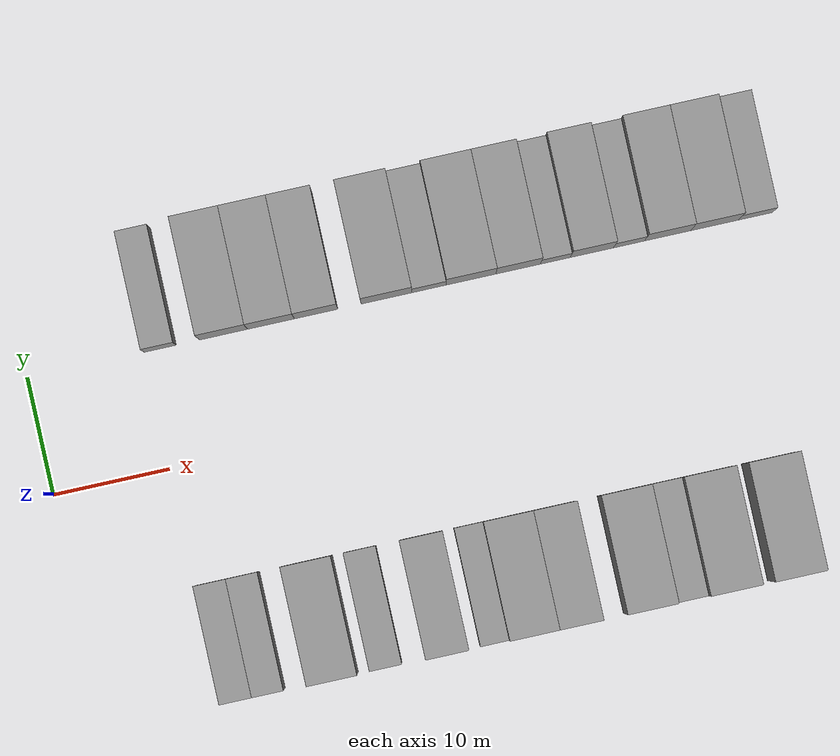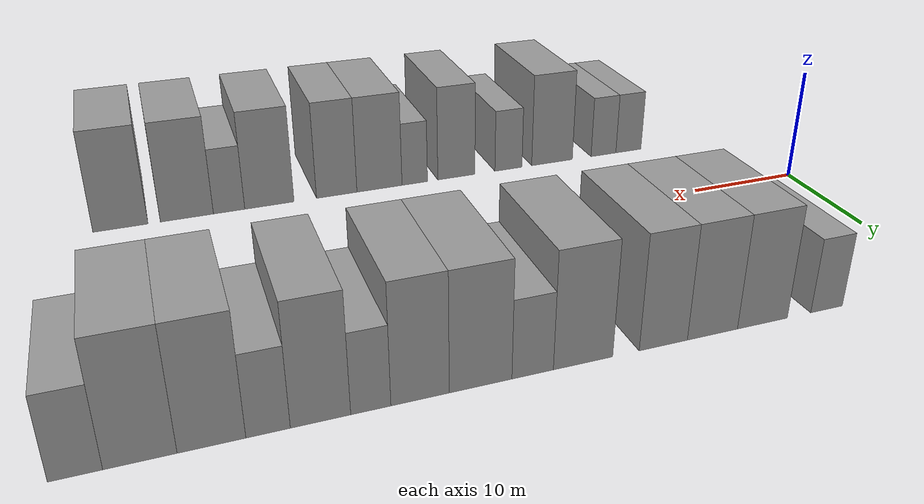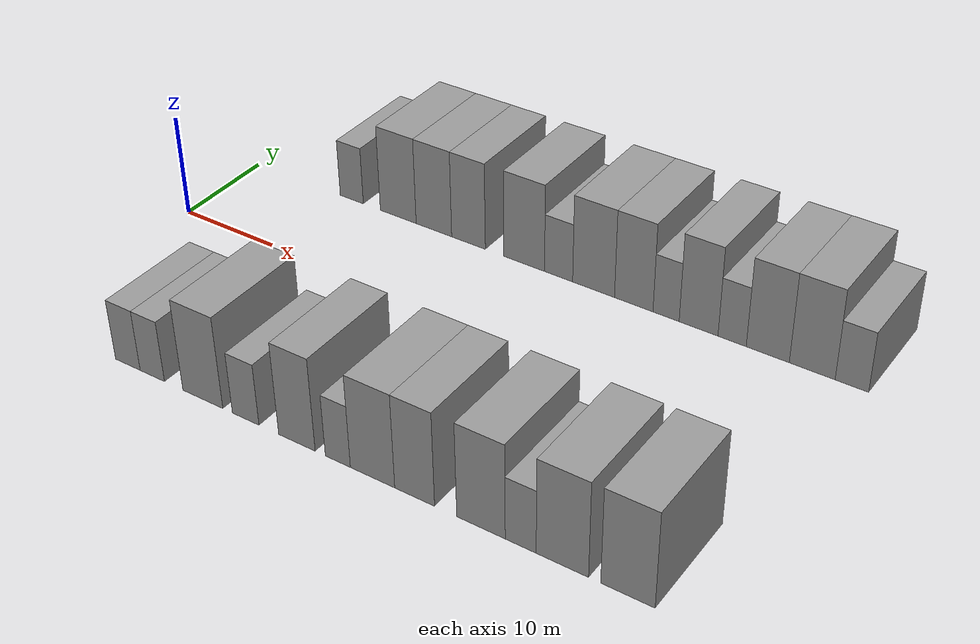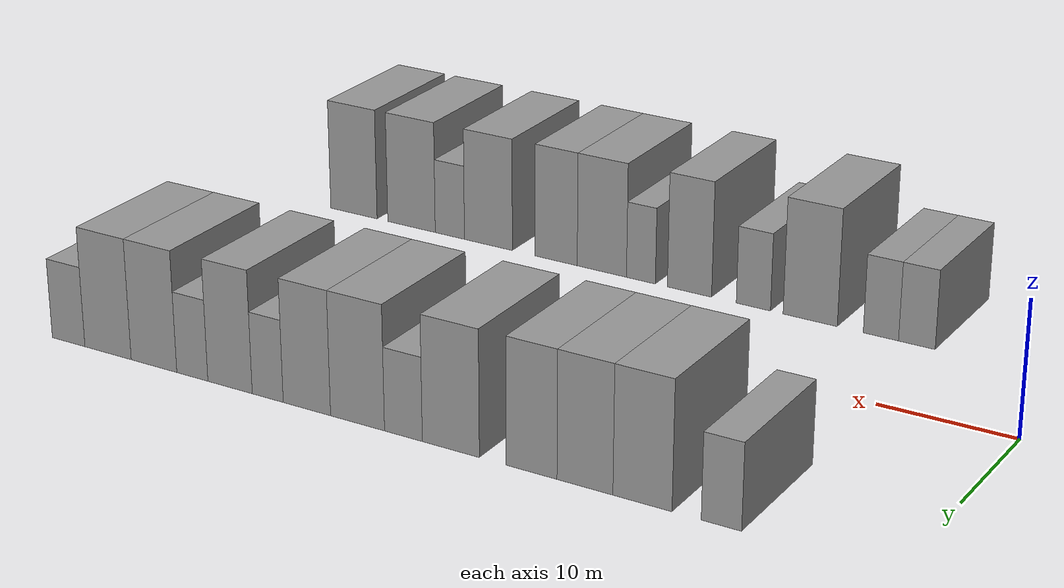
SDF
<sdf version="1.6">
 <world name="default">
  <model name="building_1">
   <static>1</static>
   <pose>11.3692 15.0000 0 0.000000 0.000000 1.570796</pose>
   <link name="link">
    <pose>0 0 3.00 0 0 0</pose>
    <collision name="collision"><geometry><box><size>10.0000 2.7384 6.0000</size></box></geometry></collision>
    <visual name="visual">
     <cast_shadows>0</cast_shadows>
     <geometry><box><size>10.0000 2.7384 6.0000</size></box></geometry>
     <material>
      <script>
       <uri>model://grey_wall/materials/scripts</uri>
       <uri>model://grey_wall/materials/textures</uri>
       <name>vrc/grey_wall</name>
      </script>
     </material>
    </visual>
   </link>
  </model>
  <model name="building_2">
   <static>1</static>
   <pose>16.8051 15.0000 0 0.000000 0.000000 1.570796</pose>
   <link name="link">
    <pose>0 0 4.50 0 0 0</pose>
    <collision name="collision"><geometry><box><size>10.0000 4.1334 9.0000</size></box></geometry></collision>
    <visual name="visual">
     <cast_shadows>0</cast_shadows>
     <geometry><box><size>10.0000 4.1334 9.0000</size></box></geometry>
     <material>
      <script>
       <uri>model://grey_wall/materials/scripts</uri>
       <uri>model://grey_wall/materials/textures</uri>
       <name>vrc/grey_wall</name>
      </script>
     </material>
    </visual>
   </link>
  </model>
  <model name="building_3">
   <static>1</static>
   <pose>20.8733 15.0000 0 0.000000 0.000000 1.570796</pose>
   <link name="link">
    <pose>0 0 4.50 0 0 0</pose>
    <collision name="collision"><geometry><box><size>10.0000 4.0029 9.0000</size></box></geometry></collision>
    <visual name="visual">
     <cast_shadows>0</cast_shadows>
     <geometry><box><size>10.0000 4.0029 9.0000</size></box></geometry>
     <material>
      <script>
       <uri>model://grey_wall/materials/scripts</uri>
       <uri>model://grey_wall/materials/textures</uri>
       <name>vrc/grey_wall</name>
      </script>
     </material>
    </visual>
   </link>
  </model>
  <model name="building_4">
   <static>1</static>
   <pose>24.7356 15.0000 0 0.000000 0.000000 1.570796</pose>
   <link name="link">
    <pose>0 0 4.50 0 0 0</pose>
    <collision name="collision"><geometry><box><size>10.0000 3.7217 9.0000</size></box></geometry></collision>
    <visual name="visual">
     <cast_shadows>0</cast_shadows>
     <geometry><box><size>10.0000 3.7217 9.0000</size></box></geometry>
     <material>
      <script>
       <uri>model://grey_wall/materials/scripts</uri>
       <uri>model://grey_wall/materials/textures</uri>
       <name>vrc/grey_wall</name>
      </script>
     </material>
    </visual>
   </link>
  </model>
  <model name="building_5">
   <static>1</static>
   <pose>30.7625 15.0000 0 0.000000 0.000000 1.570796</pose>
   <link name="link">
    <pose>0 0 4.50 0 0 0</pose>
    <collision name="collision"><geometry><box><size>10.0000 4.3320 9.0000</size></box></geometry></collision>
    <visual name="visual">
     <cast_shadows>0</cast_shadows>
     <geometry><box><size>10.0000 4.3320 9.0000</size></box></geometry>
     <material>
      <script>
       <uri>model://grey_wall/materials/scripts</uri>
       <uri>model://grey_wall/materials/textures</uri>
       <name>vrc/grey_wall</name>
      </script>
     </material>
    </visual>
   </link>
  </model>
  <model name="building_6">
   <static>1</static>
   <pose>34.3926 15.0000 0 0.000000 0.000000 1.570796</pose>
   <link name="link">
    <pose>0 0 3.00 0 0 0</pose>
    <collision name="collision"><geometry><box><size>10.0000 2.9282 6.0000</size></box></geometry></collision>
    <visual name="visual">
     <cast_shadows>0</cast_shadows>
     <geometry><box><size>10.0000 2.9282 6.0000</size></box></geometry>
     <material>
      <script>
       <uri>model://grey_wall/materials/scripts</uri>
       <uri>model://grey_wall/materials/textures</uri>
       <name>vrc/grey_wall</name>
      </script>
     </material>
    </visual>
   </link>
  </model>
  <model name="building_7">
   <static>1</static>
   <pose>37.9927 15.0000 0 0.000000 0.000000 1.570796</pose>
   <link name="link">
    <pose>0 0 4.50 0 0 0</pose>
    <collision name="collision"><geometry><box><size>10.0000 4.2720 9.0000</size></box></geometry></collision>
    <visual name="visual">
     <cast_shadows>0</cast_shadows>
     <geometry><box><size>10.0000 4.2720 9.0000</size></box></geometry>
     <material>
      <script>
       <uri>model://grey_wall/materials/scripts</uri>
       <uri>model://grey_wall/materials/textures</uri>
       <name>vrc/grey_wall</name>
      </script>
     </material>
    </visual>
   </link>
  </model>
  <model name="building_8">
   <static>1</static>
   <pose>42.0451 15.0000 0 0.000000 0.000000 1.570796</pose>
   <link name="link">
    <pose>0 0 4.50 0 0 0</pose>
    <collision name="collision"><geometry><box><size>10.0000 3.8328 9.0000</size></box></geometry></collision>
    <visual name="visual">
     <cast_shadows>0</cast_shadows>
     <geometry><box><size>10.0000 3.8328 9.0000</size></box></geometry>
     <material>
      <script>
       <uri>model://grey_wall/materials/scripts</uri>
       <uri>model://grey_wall/materials/textures</uri>
       <name>vrc/grey_wall</name>
      </script>
     </material>
    </visual>
   </link>
  </model>
  <model name="building_9">
   <static>1</static>
   <pose>45.2384 15.0000 0 0.000000 0.000000 1.570796</pose>
   <link name="link">
    <pose>0 0 3.00 0 0 0</pose>
    <collision name="collision"><geometry><box><size>10.0000 2.5539 6.0000</size></box></geometry></collision>
    <visual name="visual">
     <cast_shadows>0</cast_shadows>
     <geometry><box><size>10.0000 2.5539 6.0000</size></box></geometry>
     <material>
      <script>
       <uri>model://grey_wall/materials/scripts</uri>
       <uri>model://grey_wall/materials/textures</uri>
       <name>vrc/grey_wall</name>
      </script>
     </material>
    </visual>
   </link>
  </model>
  <model name="building_10">
   <static>1</static>
   <pose>48.3754 15.0000 0 0.000000 0.000000 1.570796</pose>
   <link name="link">
    <pose>0 0 4.50 0 0 0</pose>
    <collision name="collision"><geometry><box><size>10.0000 3.7200 9.0000</size></box></geometry></collision>
    <visual name="visual">
     <cast_shadows>0</cast_shadows>
     <geometry><box><size>10.0000 3.7200 9.0000</size></box></geometry>
     <material>
      <script>
       <uri>model://grey_wall/materials/scripts</uri>
       <uri>model://grey_wall/materials/textures</uri>
       <name>vrc/grey_wall</name>
      </script>
     </material>
    </visual>
   </link>
  </model>
  <model name="building_11">
   <static>1</static>
   <pose>51.5613 15.0000 0 0.000000 0.000000 1.570796</pose>
   <link name="link">
    <pose>0 0 3.00 0 0 0</pose>
    <collision name="collision"><geometry><box><size>10.0000 2.6518 6.0000</size></box></geometry></collision>
    <visual name="visual">
     <cast_shadows>0</cast_shadows>
     <geometry><box><size>10.0000 2.6518 6.0000</size></box></geometry>
     <material>
      <script>
       <uri>model://grey_wall/materials/scripts</uri>
       <uri>model://grey_wall/materials/textures</uri>
       <name>vrc/grey_wall</name>
      </script>
     </material>
    </visual>
   </link>
  </model>
  <model name="building_12">
   <static>1</static>
   <pose>54.8684 15.0000 0 0.000000 0.000000 1.570796</pose>
   <link name="link">
    <pose>0 0 4.50 0 0 0</pose>
    <collision name="collision"><geometry><box><size>10.0000 3.9625 9.0000</size></box></geometry></collision>
    <visual name="visual">
     <cast_shadows>0</cast_shadows>
     <geometry><box><size>10.0000 3.9625 9.0000</size></box></geometry>
     <material>
      <script>
       <uri>model://grey_wall/materials/scripts</uri>
       <uri>model://grey_wall/materials/textures</uri>
       <name>vrc/grey_wall</name>
      </script>
     </material>
    </visual>
   </link>
  </model>
  <model name="building_13">
   <static>1</static>
   <pose>58.9045 15.0000 0 0.000000 0.000000 1.570796</pose>
   <link name="link">
    <pose>0 0 4.50 0 0 0</pose>
    <collision name="collision"><geometry><box><size>10.0000 4.1097 9.0000</size></box></geometry></collision>
    <visual name="visual">
     <cast_shadows>0</cast_shadows>
     <geometry><box><size>10.0000 4.1097 9.0000</size></box></geometry>
     <material>
      <script>
       <uri>model://grey_wall/materials/scripts</uri>
       <uri>model://grey_wall/materials/textures</uri>
       <name>vrc/grey_wall</name>
      </script>
     </material>
    </visual>
   </link>
  </model>
  <model name="building_14">
   <static>1</static>
   <pose>62.4323 15.0000 0 0.000000 0.000000 1.570796</pose>
   <link name="link">
    <pose>0 0 3.00 0 0 0</pose>
    <collision name="collision"><geometry><box><size>10.0000 2.9458 6.0000</size></box></geometry></collision>
    <visual name="visual">
     <cast_shadows>0</cast_shadows>
     <geometry><box><size>10.0000 2.9458 6.0000</size></box></geometry>
     <material>
      <script>
       <uri>model://grey_wall/materials/scripts</uri>
       <uri>model://grey_wall/materials/textures</uri>
       <name>vrc/grey_wall</name>
      </script>
     </material>
    </visual>
   </link>
  </model>
  <model name="building_55">
   <static>1</static>
   <pose>11.3757 -15.0000 0 0.000000 0.000000 1.570796</pose>
   <link name="link">
    <pose>0 0 3.00 0 0 0</pose>
    <collision name="collision"><geometry><box><size>10.0000 2.7514 6.0000</size></box></geometry></collision>
    <visual name="visual">
     <cast_shadows>0</cast_shadows>
     <geometry><box><size>10.0000 2.7514 6.0000</size></box></geometry>
     <material>
      <script>
       <uri>model://grey_wall/materials/scripts</uri>
       <uri>model://grey_wall/materials/textures</uri>
       <name>vrc/grey_wall</name>
      </script>
     </material>
    </visual>
   </link>
  </model>
  <model name="building_56">
   <static>1</static>
   <pose>14.0908 -15.0000 0 0.000000 0.000000 1.570796</pose>
   <link name="link">
    <pose>0 0 3.00 0 0 0</pose>
    <collision name="collision"><geometry><box><size>10.0000 2.6787 6.0000</size></box></geometry></collision>
    <visual name="visual">
     <cast_shadows>0</cast_shadows>
     <geometry><box><size>10.0000 2.6787 6.0000</size></box></geometry>
     <material>
      <script>
       <uri>model://grey_wall/materials/scripts</uri>
       <uri>model://grey_wall/materials/textures</uri>
       <name>vrc/grey_wall</name>
      </script>
     </material>
    </visual>
   </link>
  </model>
  <model name="building_57">
   <static>1</static>
   <pose>19.5528 -15.0000 0 0.000000 0.000000 1.570796</pose>
   <link name="link">
    <pose>0 0 4.50 0 0 0</pose>
    <collision name="collision"><geometry><box><size>10.0000 4.2453 9.0000</size></box></geometry></collision>
    <visual name="visual">
     <cast_shadows>0</cast_shadows>
     <geometry><box><size>10.0000 4.2453 9.0000</size></box></geometry>
     <material>
      <script>
       <uri>model://grey_wall/materials/scripts</uri>
       <uri>model://grey_wall/materials/textures</uri>
       <name>vrc/grey_wall</name>
      </script>
     </material>
    </visual>
   </link>
  </model>
  <model name="building_58">
   <static>1</static>
   <pose>24.0463 -15.0000 0 0.000000 0.000000 1.570796</pose>
   <link name="link">
    <pose>0 0 3.00 0 0 0</pose>
    <collision name="collision"><geometry><box><size>10.0000 2.7418 6.0000</size></box></geometry></collision>
    <visual name="visual">
     <cast_shadows>0</cast_shadows>
     <geometry><box><size>10.0000 2.7418 6.0000</size></box></geometry>
     <material>
      <script>
       <uri>model://grey_wall/materials/scripts</uri>
       <uri>model://grey_wall/materials/textures</uri>
       <name>vrc/grey_wall</name>
      </script>
     </material>
    </visual>
   </link>
  </model>
  <model name="building_59">
   <static>1</static>
   <pose>29.2364 -15.0000 0 0.000000 0.000000 1.570796</pose>
   <link name="link">
    <pose>0 0 4.50 0 0 0</pose>
    <collision name="collision"><geometry><box><size>10.0000 3.6383 9.0000</size></box></geometry></collision>
    <visual name="visual">
     <cast_shadows>0</cast_shadows>
     <geometry><box><size>10.0000 3.6383 9.0000</size></box></geometry>
     <material>
      <script>
       <uri>model://grey_wall/materials/scripts</uri>
       <uri>model://grey_wall/materials/textures</uri>
       <name>vrc/grey_wall</name>
      </script>
     </material>
    </visual>
   </link>
  </model>
  <model name="building_60">
   <static>1</static>
   <pose>33.2701 -15.0000 0 0.000000 0.000000 1.570796</pose>
   <link name="link">
    <pose>0 0 3.00 0 0 0</pose>
    <collision name="collision"><geometry><box><size>10.0000 2.4290 6.0000</size></box></geometry></collision>
    <visual name="visual">
     <cast_shadows>0</cast_shadows>
     <geometry><box><size>10.0000 2.4290 6.0000</size></box></geometry>
     <material>
      <script>
       <uri>model://grey_wall/materials/scripts</uri>
       <uri>model://grey_wall/materials/textures</uri>
       <name>vrc/grey_wall</name>
      </script>
     </material>
    </visual>
   </link>
  </model>
  <model name="building_61">
   <static>1</static>
   <pose>36.5867 -15.0000 0 0.000000 0.000000 1.570796</pose>
   <link name="link">
    <pose>0 0 4.50 0 0 0</pose>
    <collision name="collision"><geometry><box><size>10.0000 4.2042 9.0000</size></box></geometry></collision>
    <visual name="visual">
     <cast_shadows>0</cast_shadows>
     <geometry><box><size>10.0000 4.2042 9.0000</size></box></geometry>
     <material>
      <script>
       <uri>model://grey_wall/materials/scripts</uri>
       <uri>model://grey_wall/materials/textures</uri>
       <name>vrc/grey_wall</name>
      </script>
     </material>
    </visual>
   </link>
  </model>
  <model name="building_62">
   <static>1</static>
   <pose>40.5268 -15.0000 0 0.000000 0.000000 1.570796</pose>
   <link name="link">
    <pose>0 0 4.50 0 0 0</pose>
    <collision name="collision"><geometry><box><size>10.0000 3.6761 9.0000</size></box></geometry></collision>
    <visual name="visual">
     <cast_shadows>0</cast_shadows>
     <geometry><box><size>10.0000 3.6761 9.0000</size></box></geometry>
     <material>
      <script>
       <uri>model://grey_wall/materials/scripts</uri>
       <uri>model://grey_wall/materials/textures</uri>
       <name>vrc/grey_wall</name>
      </script>
     </material>
    </visual>
   </link>
  </model>
  <model name="building_63">
   <static>1</static>
   <pose>46.5108 -15.0000 0 0.000000 0.000000 1.570796</pose>
   <link name="link">
    <pose>0 0 4.50 0 0 0</pose>
    <collision name="collision"><geometry><box><size>10.0000 4.2917 9.0000</size></box></geometry></collision>
    <visual name="visual">
     <cast_shadows>0</cast_shadows>
     <geometry><box><size>10.0000 4.2917 9.0000</size></box></geometry>
     <material>
      <script>
       <uri>model://grey_wall/materials/scripts</uri>
       <uri>model://grey_wall/materials/textures</uri>
       <name>vrc/grey_wall</name>
      </script>
     </material>
    </visual>
   </link>
  </model>
  <model name="building_64">
   <static>1</static>
   <pose>49.9882 -15.0000 0 0.000000 0.000000 1.570796</pose>
   <link name="link">
    <pose>0 0 3.00 0 0 0</pose>
    <collision name="collision"><geometry><box><size>10.0000 2.6633 6.0000</size></box></geometry></collision>
    <visual name="visual">
     <cast_shadows>0</cast_shadows>
     <geometry><box><size>10.0000 2.6633 6.0000</size></box></geometry>
     <material>
      <script>
       <uri>model://grey_wall/materials/scripts</uri>
       <uri>model://grey_wall/materials/textures</uri>
       <name>vrc/grey_wall</name>
      </script>
     </material>
    </visual>
   </link>
  </model>
  <model name="building_65">
   <static>1</static>
   <pose>53.5216 -15.0000 0 0.000000 0.000000 1.570796</pose>
   <link name="link">
    <pose>0 0 4.50 0 0 0</pose>
    <collision name="collision"><geometry><box><size>10.0000 4.4035 9.0000</size></box></geometry></collision>
    <visual name="visual">
     <cast_shadows>0</cast_shadows>
     <geometry><box><size>10.0000 4.4035 9.0000</size></box></geometry>
     <material>
      <script>
       <uri>model://grey_wall/materials/scripts</uri>
       <uri>model://grey_wall/materials/textures</uri>
       <name>vrc/grey_wall</name>
      </script>
     </material>
    </visual>
   </link>
  </model>
  <model name="building_66">
   <static>1</static>
   <pose>58.9235 -15.0000 0 0.000000 0.000000 1.570796</pose>
   <link name="link">
    <pose>0 0 4.50 0 0 0</pose>
    <collision name="collision"><geometry><box><size>10.0000 4.4001 9.0000</size></box></geometry></collision>
    <visual name="visual">
     <cast_shadows>0</cast_shadows>
     <geometry><box><size>10.0000 4.4001 9.0000</size></box></geometry>
     <material>
      <script>
       <uri>model://grey_wall/materials/scripts</uri>
       <uri>model://grey_wall/materials/textures</uri>
       <name>vrc/grey_wall</name>
      </script>
     </material>
    </visual>
   </link>
  </model>
 </world>
</sdf>
